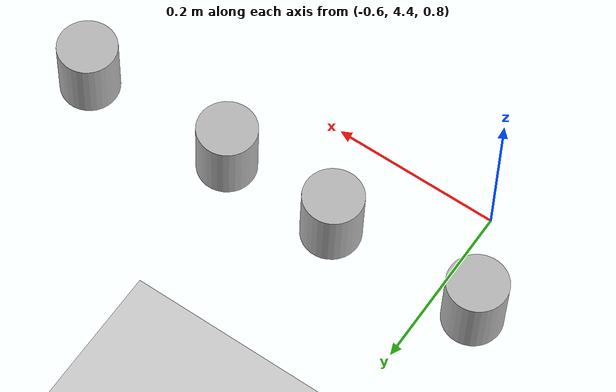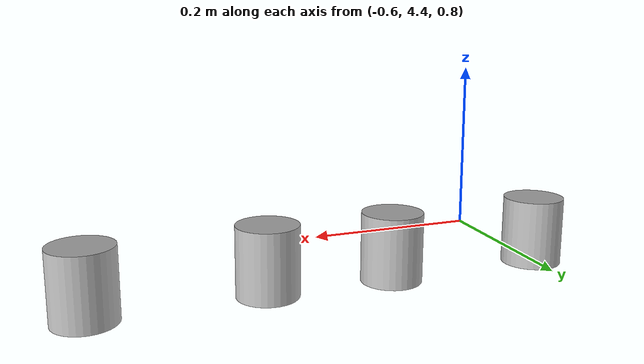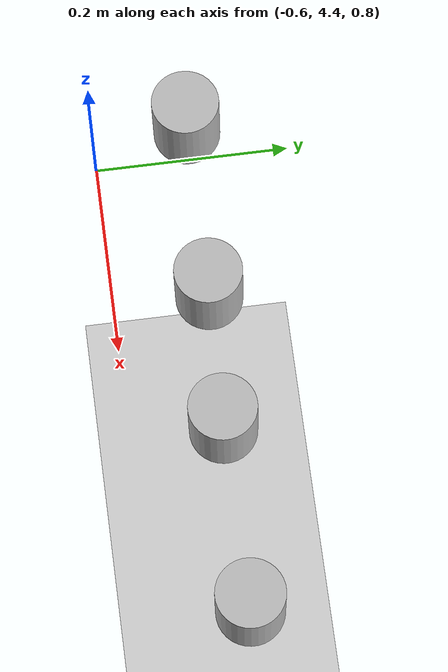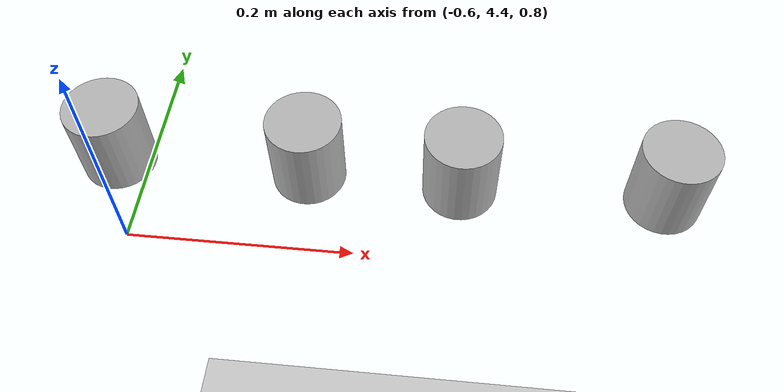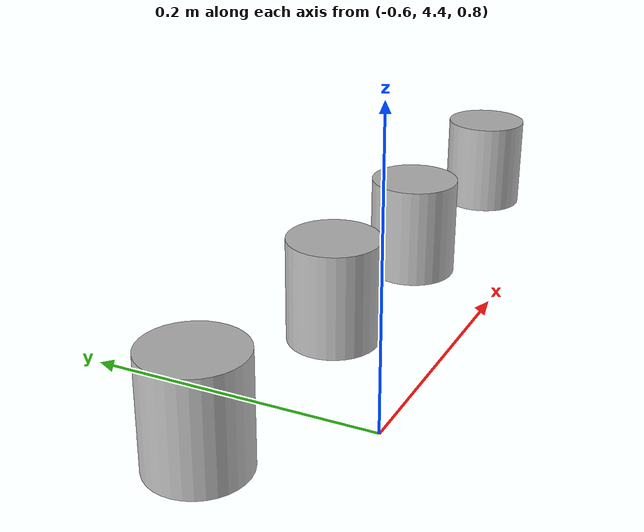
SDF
<sdf version="1.6">
 <world name="default">
  <model name="ground_plane">
   <static>1</static>
   <link name="link">
    <collision name="collision">
     <geometry><plane><normal>0 0 1</normal><size>100 100</size></plane></geometry>
     <surface><friction><ode><mu>100</mu><mu2>50</mu2></ode></friction></surface>
    </collision>
    <visual name="visual">
     <cast_shadows>0</cast_shadows>
     <geometry><plane><normal>0 0 1</normal><size>100 100</size></plane></geometry>
     <material>
      <script><uri>file://media/materials/scripts/gazebo.material</uri><name>Gazebo/Grey</name></script>
     </material>
    </visual>
   </link>
  </model>
  <model name="cans">
   <link name="link">
    <inertial>
     <mass>0.25</mass>
     <inertia>
      <ixx>0.00022647</ixx>
      <ixy>0</ixy>
      <ixz>0</ixz>
      <iyy>0.00022647</iyy>
      <iyz>0</iyz>
      <izz>0.0001015</izz>
     </inertia>
     <pose>0 0 0.2 0 -0 0</pose>
    </inertial>
    <visual name="ModelPreview_8::link::visual_1">
     <geometry><mesh><uri>model://cans/meshes/cylindermesh.dae</uri><scale>1 1 1</scale></mesh></geometry>
     <material>
      <script>
       <uri>model://cans/materials/scripts</uri>
       <uri>model://cans/materials/textures</uri>
       <name>cylinder</name>
      </script>
     </material>
    </visual>
    <visual name="visual">
     <geometry><mesh><uri>model://cans/meshes/cylindermesh.dae</uri><scale>1 1 1</scale></mesh></geometry>
     <material>
      <script>
       <uri>model://cans/materials/scripts</uri>
       <uri>model://cans/materials/textures</uri>
       <name>cylinder</name>
      </script>
     </material>
    </visual>
    <collision name="collision">
     <geometry><mesh><uri>model://cans/meshes/cylindermesh.dae</uri><scale>1 1 1</scale></mesh></geometry>
     <surface>
      <friction>
       <ode><mu>30</mu><mu2>30</mu2><fdir1>0 0 0</fdir1><slip1>0</slip1><slip2>0</slip2></ode>
       <torsional>
        <coefficient>1</coefficient>
        <patch_radius>0</patch_radius>
        <surface_radius>0</surface_radius>
        <use_patch_radius>1</use_patch_radius>
        <ode><slip>0</slip></ode>
       </torsional>
      </friction>
      <bounce><restitution_coefficient>0</restitution_coefficient><threshold>1e+06</threshold></bounce>
      <contact>
       <collide_without_contact>0</collide_without_contact>
       <collide_without_contact_bitmask>1</collide_without_contact_bitmask>
       <collide_bitmask>1</collide_bitmask>
       <ode>
        <soft_cfm>0</soft_cfm>
        <soft_erp>0.2</soft_erp>
        <kp>1e+06</kp>
        <kd>100</kd>
        <max_vel>1</max_vel>
        <min_depth>0.002</min_depth>
       </ode>
       <bullet>
        <split_impulse>1</split_impulse>
        <split_impulse_penetration_threshold>-0.01</split_impulse_penetration_threshold>
        <soft_cfm>0</soft_cfm>
        <soft_erp>0.2</soft_erp>
        <kp>1e+13</kp>
        <kd>1</kd>
       </bullet>
      </contact>
     </surface>
    </collision>
   </link>
   <static>0</static>
   <pose>-0.311592 4.49556 0.813661 0.014863 -0.012194 -0.095705</pose>
  </model>
  <model name="cans_0">
   <link name="link">
    <inertial>
     <mass>0.25</mass>
     <inertia>
      <ixx>0.00022647</ixx>
      <ixy>0</ixy>
      <ixz>0</ixz>
      <iyy>0.00022647</iyy>
      <iyz>0</iyz>
      <izz>0.0001015</izz>
     </inertia>
     <pose>0 0 0.2 0 -0 0</pose>
    </inertial>
    <visual name="ModelPreview_8::link::visual_1">
     <geometry><mesh><uri>model://cans/meshes/cylindermesh.dae</uri><scale>1 1 1</scale></mesh></geometry>
     <material>
      <script>
       <uri>model://cans/materials/scripts</uri>
       <uri>model://cans/materials/textures</uri>
       <name>cylinder</name>
      </script>
     </material>
    </visual>
    <visual name="visual">
     <geometry><mesh><uri>model://cans/meshes/cylindermesh.dae</uri><scale>1 1 1</scale></mesh></geometry>
     <material>
      <script>
       <uri>model://cans/materials/scripts</uri>
       <uri>model://cans/materials/textures</uri>
       <name>cylinder</name>
      </script>
     </material>
    </visual>
    <collision name="collision">
     <geometry><mesh><uri>model://cans/meshes/cylindermesh.dae</uri><scale>1 1 1</scale></mesh></geometry>
     <surface>
      <friction>
       <ode><mu>30</mu><mu2>30</mu2><fdir1>0 0 0</fdir1><slip1>0</slip1><slip2>0</slip2></ode>
       <torsional>
        <coefficient>1</coefficient>
        <patch_radius>0</patch_radius>
        <surface_radius>0</surface_radius>
        <use_patch_radius>1</use_patch_radius>
        <ode><slip>0</slip></ode>
       </torsional>
      </friction>
      <bounce><restitution_coefficient>0</restitution_coefficient><threshold>1e+06</threshold></bounce>
      <contact>
       <collide_without_contact>0</collide_without_contact>
       <collide_without_contact_bitmask>1</collide_without_contact_bitmask>
       <collide_bitmask>1</collide_bitmask>
       <ode>
        <soft_cfm>0</soft_cfm>
        <soft_erp>0.2</soft_erp>
        <kp>1e+06</kp>
        <kd>100</kd>
        <max_vel>1</max_vel>
        <min_depth>0.002</min_depth>
       </ode>
       <bullet>
        <split_impulse>1</split_impulse>
        <split_impulse_penetration_threshold>-0.01</split_impulse_penetration_threshold>
        <soft_cfm>0</soft_cfm>
        <soft_erp>0.2</soft_erp>
        <kp>1e+13</kp>
        <kd>1</kd>
       </bullet>
      </contact>
     </surface>
    </collision>
   </link>
   <static>0</static>
   <pose>-0.641784 4.49925 0.813591 0.015139 -0.008093 -0.09563</pose>
  </model>
  <model name="cans_1">
   <link name="link">
    <inertial>
     <mass>0.25</mass>
     <inertia>
      <ixx>0.00022647</ixx>
      <ixy>0</ixy>
      <ixz>0</ixz>
      <iyy>0.00022647</iyy>
      <iyz>0</iyz>
      <izz>0.0001015</izz>
     </inertia>
     <pose>0 0 0.2 0 -0 0</pose>
    </inertial>
    <visual name="ModelPreview_8::link::visual_1">
     <geometry><mesh><uri>model://cans/meshes/cylindermesh.dae</uri><scale>1 1 1</scale></mesh></geometry>
     <material>
      <script>
       <uri>model://cans/materials/scripts</uri>
       <uri>model://cans/materials/textures</uri>
       <name>cylinder</name>
      </script>
     </material>
    </visual>
    <visual name="visual">
     <geometry><mesh><uri>model://cans/meshes/cylindermesh.dae</uri><scale>1 1 1</scale></mesh></geometry>
     <material>
      <script>
       <uri>model://cans/materials/scripts</uri>
       <uri>model://cans/materials/textures</uri>
       <name>cylinder</name>
      </script>
     </material>
    </visual>
    <collision name="collision">
     <geometry><mesh><uri>model://cans/meshes/cylindermesh.dae</uri><scale>1 1 1</scale></mesh></geometry>
     <surface>
      <friction>
       <ode><mu>30</mu><mu2>30</mu2><fdir1>0 0 0</fdir1><slip1>0</slip1><slip2>0</slip2></ode>
       <torsional>
        <coefficient>1</coefficient>
        <patch_radius>0</patch_radius>
        <surface_radius>0</surface_radius>
        <use_patch_radius>1</use_patch_radius>
        <ode><slip>0</slip></ode>
       </torsional>
      </friction>
      <bounce><restitution_coefficient>0</restitution_coefficient><threshold>1e+06</threshold></bounce>
      <contact>
       <collide_without_contact>0</collide_without_contact>
       <collide_without_contact_bitmask>1</collide_without_contact_bitmask>
       <collide_bitmask>1</collide_bitmask>
       <ode>
        <soft_cfm>0</soft_cfm>
        <soft_erp>0.2</soft_erp>
        <kp>1e+06</kp>
        <kd>100</kd>
        <max_vel>1</max_vel>
        <min_depth>0.002</min_depth>
       </ode>
       <bullet>
        <split_impulse>1</split_impulse>
        <split_impulse_penetration_threshold>-0.01</split_impulse_penetration_threshold>
        <soft_cfm>0</soft_cfm>
        <soft_erp>0.2</soft_erp>
        <kp>1e+13</kp>
        <kd>1</kd>
       </bullet>
      </contact>
     </surface>
    </collision>
   </link>
   <static>0</static>
   <pose>-0.455674 4.4994 0.813684 0.015393 -0.012631 -0.095113</pose>
  </model>
  <model name="cans_2">
   <link name="link">
    <inertial>
     <mass>0.25</mass>
     <inertia>
      <ixx>0.00022647</ixx>
      <ixy>0</ixy>
      <ixz>0</ixz>
      <iyy>0.00022647</iyy>
      <iyz>0</iyz>
      <izz>0.0001015</izz>
     </inertia>
     <pose>0 0 0.2 0 -0 0</pose>
    </inertial>
    <visual name="ModelPreview_8::link::visual_1">
     <geometry><mesh><uri>model://cans/meshes/cylindermesh.dae</uri><scale>1 1 1</scale></mesh></geometry>
     <material>
      <script>
       <uri>model://cans/materials/scripts</uri>
       <uri>model://cans/materials/textures</uri>
       <name>cylinder</name>
      </script>
     </material>
    </visual>
    <visual name="visual">
     <geometry><mesh><uri>model://cans/meshes/cylindermesh.dae</uri><scale>1 1 1</scale></mesh></geometry>
     <material>
      <script>
       <uri>model://cans/materials/scripts</uri>
       <uri>model://cans/materials/textures</uri>
       <name>cylinder</name>
      </script>
     </material>
    </visual>
    <collision name="collision">
     <geometry><mesh><uri>model://cans/meshes/cylindermesh.dae</uri><scale>1 1 1</scale></mesh></geometry>
     <surface>
      <friction>
       <ode><mu>30</mu><mu2>30</mu2><fdir1>0 0 0</fdir1><slip1>0</slip1><slip2>0</slip2></ode>
       <torsional>
        <coefficient>1</coefficient>
        <patch_radius>0</patch_radius>
        <surface_radius>0</surface_radius>
        <use_patch_radius>1</use_patch_radius>
        <ode><slip>0</slip></ode>
       </torsional>
      </friction>
      <bounce><restitution_coefficient>0</restitution_coefficient><threshold>1e+06</threshold></bounce>
      <contact>
       <collide_without_contact>0</collide_without_contact>
       <collide_without_contact_bitmask>1</collide_without_contact_bitmask>
       <collide_bitmask>1</collide_bitmask>
       <ode>
        <soft_cfm>0</soft_cfm>
        <soft_erp>0.2</soft_erp>
        <kp>1e+06</kp>
        <kd>100</kd>
        <max_vel>1</max_vel>
        <min_depth>0.002</min_depth>
       </ode>
       <bullet>
        <split_impulse>1</split_impulse>
        <split_impulse_penetration_threshold>-0.01</split_impulse_penetration_threshold>
        <soft_cfm>0</soft_cfm>
        <soft_erp>0.2</soft_erp>
        <kp>1e+13</kp>
        <kd>1</kd>
       </bullet>
      </contact>
     </surface>
    </collision>
   </link>
   <static>0</static>
   <pose>-0.121567 4.49801 0.813542 0.013876 -0.007419 -0.104217</pose>
  </model>
 </world>
</sdf>
